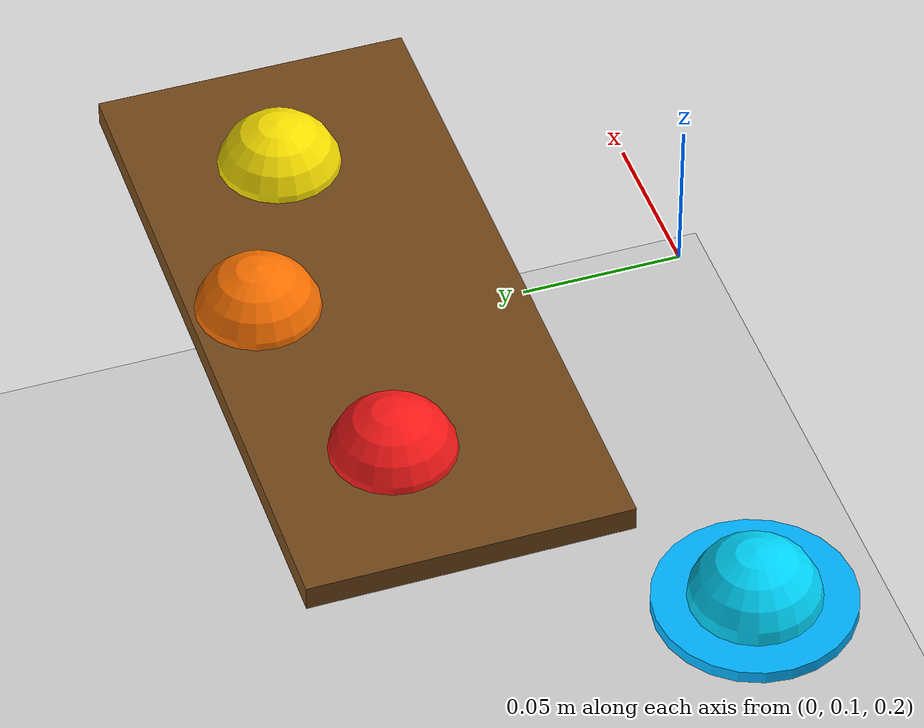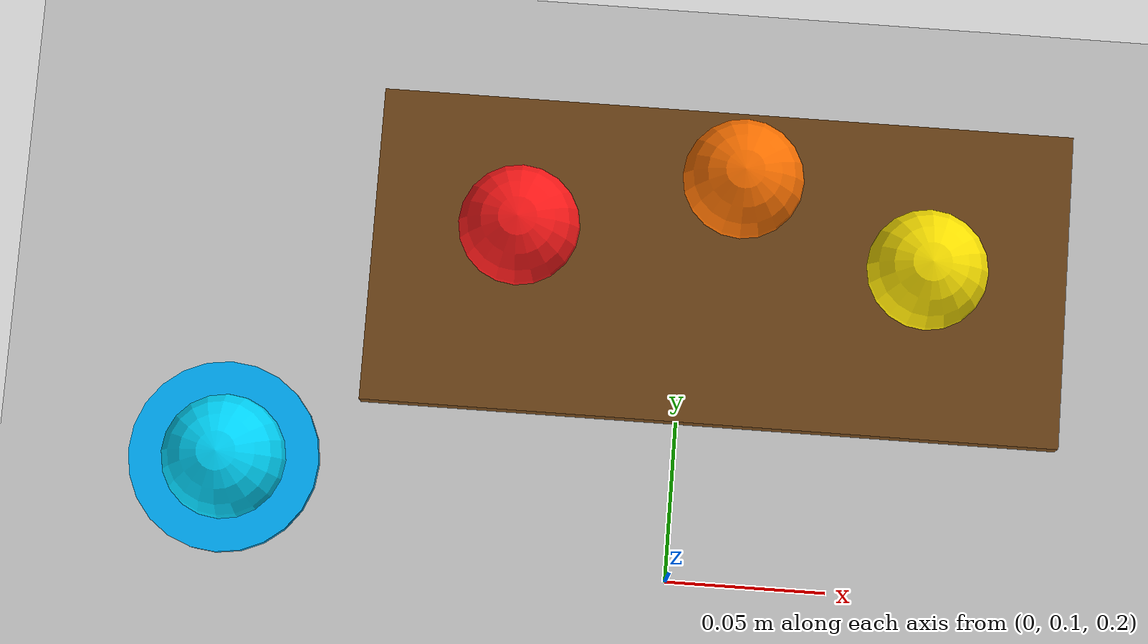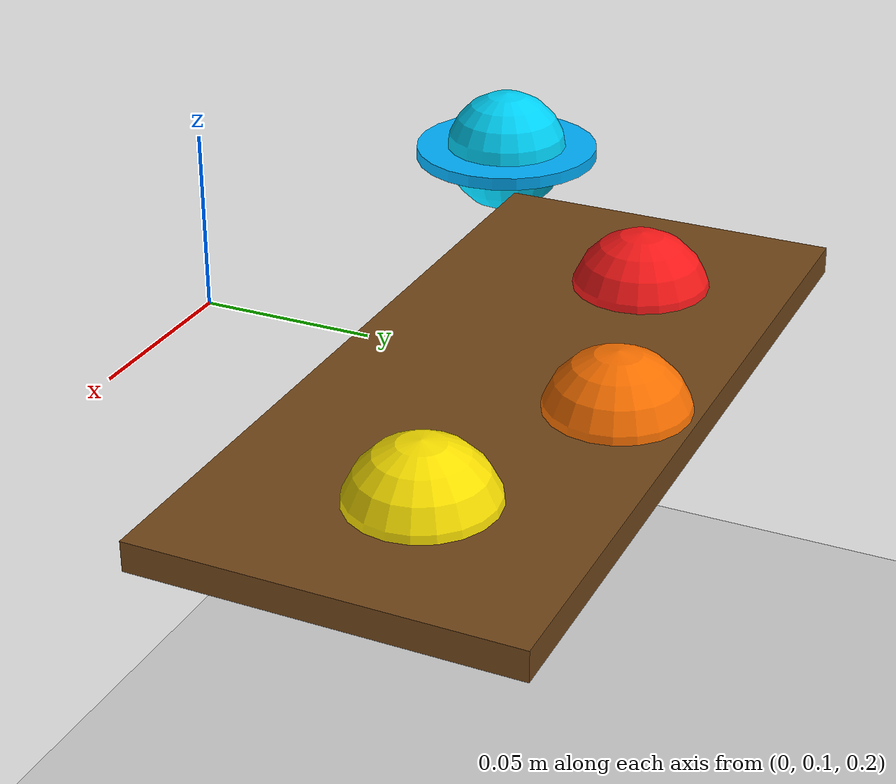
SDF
<?xml version="1.0" ?>
<sdf version="1.8">
  <world name="scara_world">

    <physics name="1ms" type="ignored">
      <max_step_size>0.001</max_step_size>
      <real_time_factor>1.0</real_time_factor>
    </physics>

    <plugin filename="gz-sim-physics-system"
            name="gz::sim::systems::Physics"/>
    <plugin filename="gz-sim-scene-broadcaster-system"
            name="gz::sim::systems::SceneBroadcaster"/>
    <plugin filename="gz-sim-user-commands-system"
            name="gz::sim::systems::UserCommands"/>
    <plugin filename="gz-sim-sensors-system"
            name="gz::sim::systems::Sensors">
      <render_engine>ogre2</render_engine>
    </plugin>

    <light type="directional" name="sun">
      <cast_shadows>true</cast_shadows>
      <pose>0 0 10 0 0 0</pose>
      <diffuse>0.8 0.8 0.8 1</diffuse>
      <specular>0.2 0.2 0.2 1</specular>
      <attenuation>
        <range>1000</range>
        <constant>0.9</constant>
        <linear>0.01</linear>
        <quadratic>0.001</quadratic>
      </attenuation>
      <direction>-0.5 0.1 -0.9</direction>
    </light>

    <model name="ground_plane">
      <static>true</static>
      <link name="link">
        <collision name="collision">
          <geometry><plane><normal>0 0 1</normal></plane></geometry>
        </collision>
        <visual name="visual">
          <geometry><plane><normal>0 0 1</normal><size>100 100</size></plane></geometry>
          <material>
            <ambient>0.8 0.8 0.8 1</ambient>
            <diffuse>0.8 0.8 0.8 1</diffuse>
          </material>
        </visual>
      </link>
    </model>

    <model name="mesa_depositos">
      <static>true</static>
      <pose>0.01 0.2 0.2 0 0 0</pose>
      <link name="link">
        <collision name="col">
          <geometry><box><size>0.22 0.10 0.008</size></box></geometry>
        </collision>
        <visual name="vis">
          <geometry><box><size>0.22 0.10 0.008</size></box></geometry>
          <material><ambient>0.45 0.28 0.10 1</ambient><diffuse>0.45 0.28 0.10 1</diffuse></material>
        </visual>
      </link>
    </model>

    <model name="plat_pick">
      <static>true</static>
      <pose>-0.141 0.129 0.2 0 0 0</pose>
      <link name="link">
        <visual name="vis">
          <geometry><cylinder><radius>0.030</radius><length>0.004</length></cylinder></geometry>
          <material><ambient>0.0 0.7 1.0 1</ambient><diffuse>0.0 0.7 1.0 1</diffuse></material>
        </visual>
      </link>
    </model>

    <model name="marker_pick">
      <static>true</static>
      <pose>-0.141 0.129 0.2 0 0 0</pose>
      <link name="link">
        <visual name="vis">
          <geometry><sphere><radius>0.020</radius></sphere></geometry>
          <material><ambient>0.0 0.85 1.0 1</ambient><diffuse>0.0 0.85 1.0 1</diffuse></material>
        </visual>
      </link>
    </model>

    <model name="deposito_C1">
      <static>true</static>
      <pose>0.076 0.204 0.2 0 0 0</pose>
      <link name="link">
        <visual name="vis">
          <geometry><sphere><radius>0.020</radius></sphere></geometry>
          <material><ambient>1.0 0.9 0.0 1</ambient><diffuse>1.0 0.9 0.0 1</diffuse></material>
        </visual>
      </link>
    </model>

    <model name="deposito_C2">
      <static>true</static>
      <pose>0.016 0.229 0.2 0 0 0</pose>
      <link name="link">
        <visual name="vis">
          <geometry><sphere><radius>0.020</radius></sphere></geometry>
          <material><ambient>1.0 0.45 0.0 1</ambient><diffuse>1.0 0.45 0.0 1</diffuse></material>
        </visual>
      </link>
    </model>

    <model name="deposito_C3">
      <static>true</static>
      <pose>-0.054 0.209 0.2 0 0 0</pose>
      <link name="link">
        <visual name="vis">
          <geometry><sphere><radius>0.020</radius></sphere></geometry>
          <material><ambient>1.0 0.1 0.1 1</ambient><diffuse>1.0 0.1 0.1 1</diffuse></material>
        </visual>
      </link>
    </model>

  </world>
</sdf>
